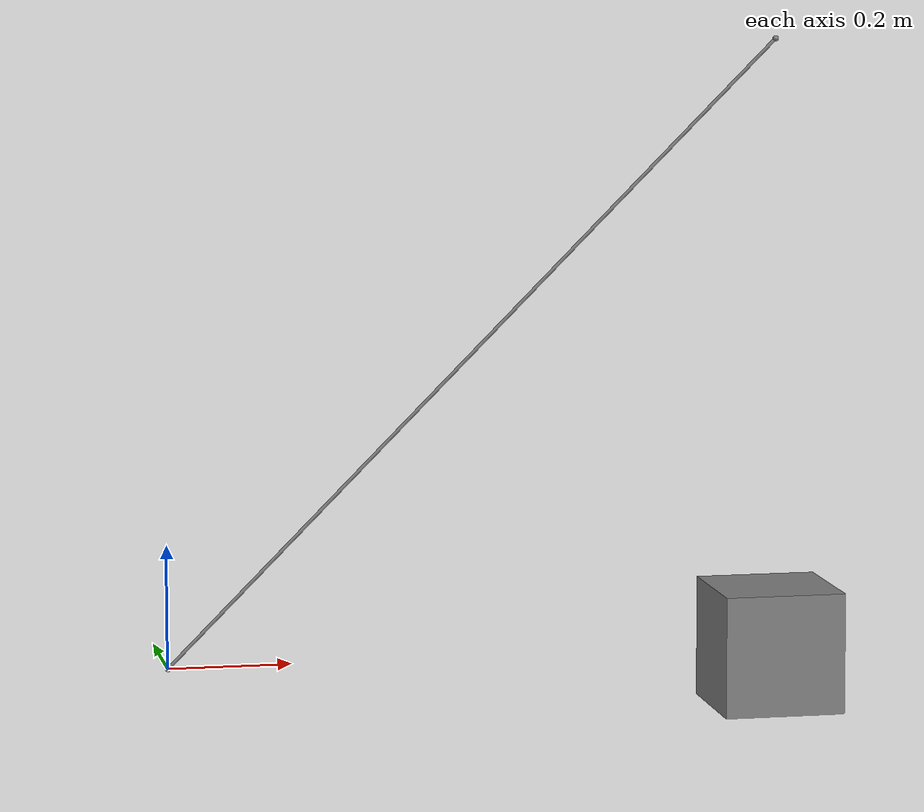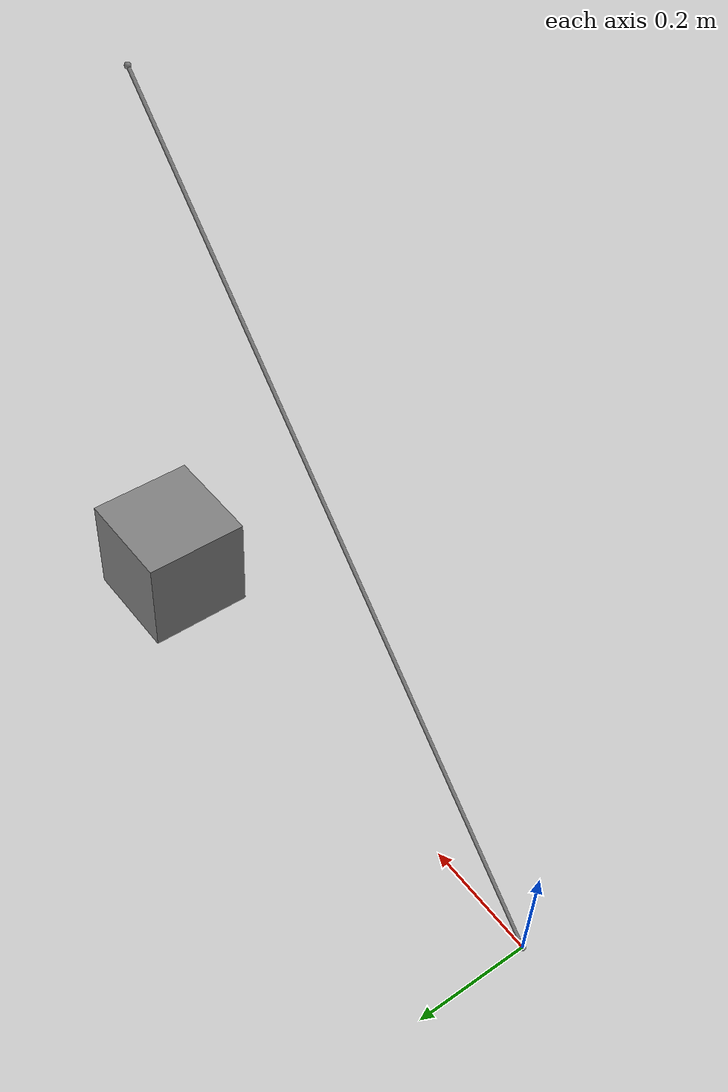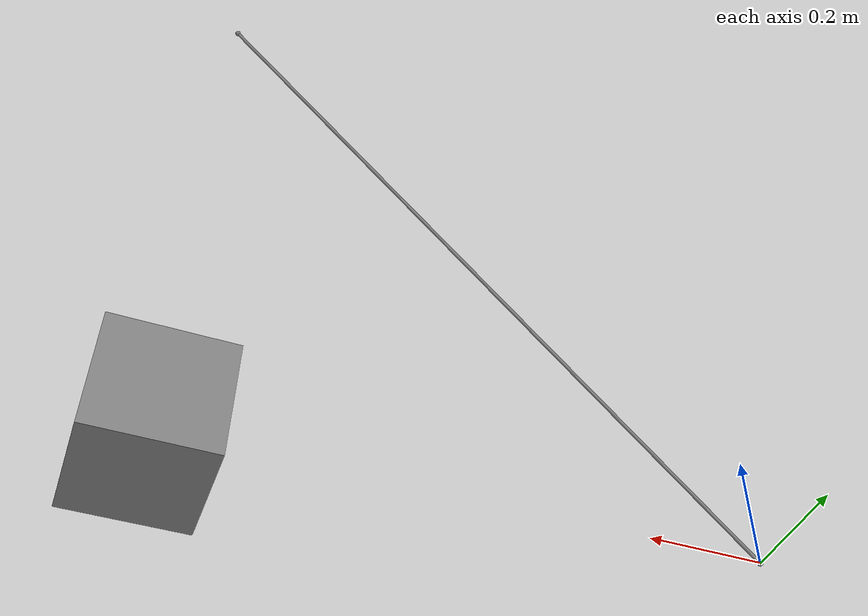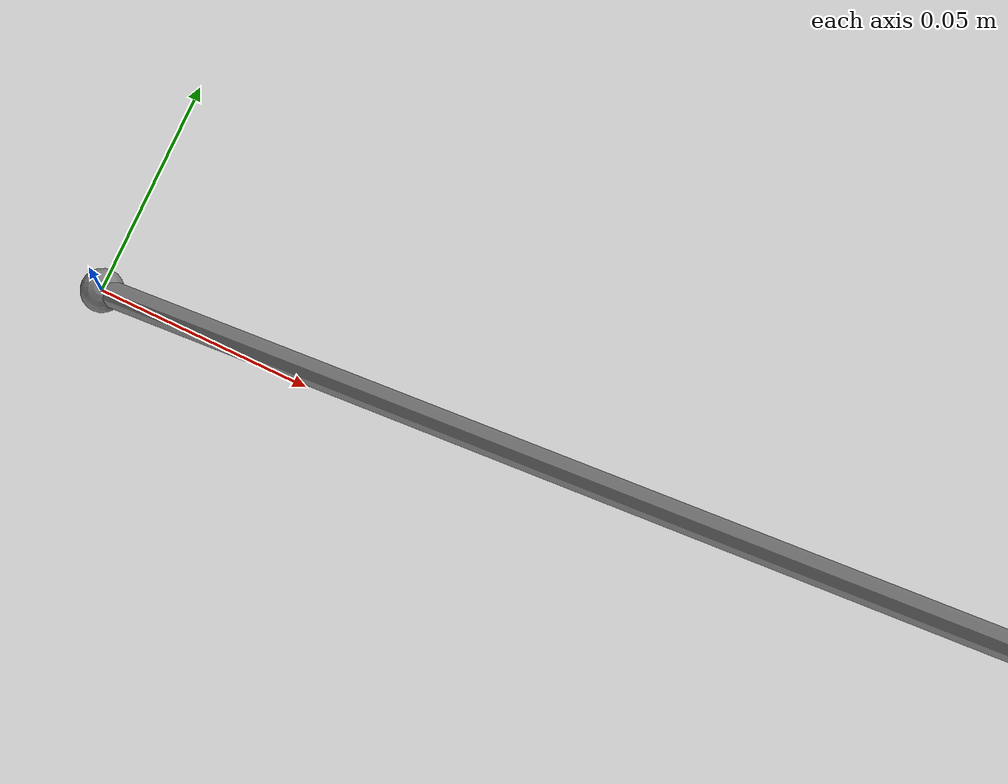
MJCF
<mujoco>
  <worldbody>
    <site name="site0" pos="1 0 1"/>
    <body>
      <joint type="slide" axis="0 0 1"/>
      <joint type="hinge" axis="0 1 0"/>
      <geom type="box" size="0.1 0.1 0.1" mass="1" pos="1 0 0"/>
      <site name="site1"/>
    </body>
  </worldbody>
  <tendon>
    <spatial armature="123">
      <site site="site0"/>
      <site site="site1"/>
    </spatial>
    <spatial armature="456">
      <site site="site0"/>
      <site site="site1"/>
    </spatial>
  </tendon>
  <keyframe>
    <key qpos="1.2345 1.2345" qvel="1.2345 1.2345"/>
  </keyframe>
</mujoco>
